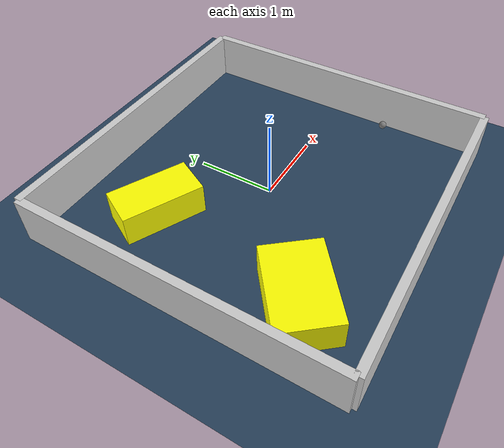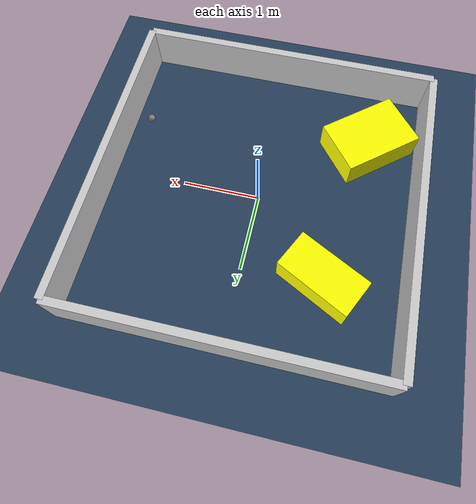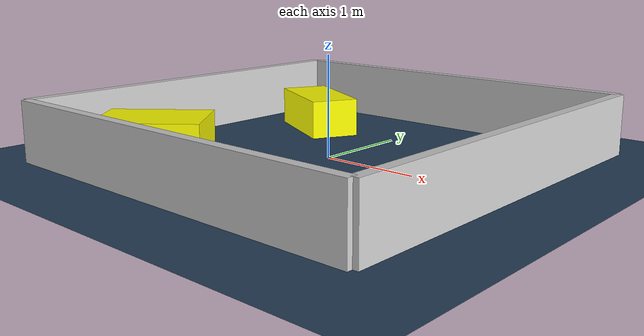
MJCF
<?xml version="1.0" ?>
<mujoco model="generated_environment">
  <option timestep="0.01" integrator="RK4" cone="elliptic"/>
  <default>
    <geom density="1"/>
  </default>
  <asset>
    <texture builtin="gradient" height="3072" rgb1="0.3 0.5 0.7" rgb2="0 0 0" type="skybox" width="512"/>
    <texture builtin="checker" height="300" mark="edge" markrgb="0.8 0.8 0.8" name="groundplane" rgb1="0.2 0.3 0.4" rgb2="0.1 0.2 0.3" type="2d" width="300"/>
    <material name="groundplane" reflectance="0.2" texrepeat="5 5" texture="groundplane" texuniform="true"/>
    <material name="robot" rgba="0.0 1.0 0.0 1"/>
  </asset>
  <worldbody>
    <light dir="0 0 -1" directional="true" pos="0 0 1.5"/>
    <geom condim="4" friction="1.0 0.005 0.001" material="groundplane" name="floor" size="0 0 0.05" type="plane"/>
    <body name="walls">
      <geom name="wall_1" condim="4" pos="-2.0 0.0 0.3" rgba="0.800000011920929 0.800000011920929 0.800000011920929 1.0" size="0.05 2.0 0.3" type="box"/>
      <geom name="wall_2" condim="4" pos="2.0 0.0 0.3" rgba="0.800000011920929 0.800000011920929 0.800000011920929 1.0" size="0.05 2.0 0.3" type="box"/>
      <geom name="wall_3" condim="4" pos="0.0 -2.0 0.3" rgba="0.800000011920929 0.800000011920929 0.800000011920929 1.0" size="2.0 0.05 0.3" type="box"/>
      <geom name="wall_4" condim="4" pos="0.0 2.0 0.3" rgba="0.800000011920929 0.800000011920929 0.800000011920929 1.0" size="2.0 0.05 0.3" type="box"/>
    </body>
    <body name="robot">
      <joint name="joint_x" type="slide" pos="0 0 0" axis="1 0 0"/>
      <joint name="joint_y" type="slide" pos="0 0 0" axis="0 1 0"/>
      <geom name="robot" type="sphere" pos="1.698171637630871 -0.7905143626354583 0.2" size="0.05" mass="5." friction="1.0 0.005 0.0001" condim="4"/>
      <site name="sensor_ball"/>
    </body>
    <body name="obstacle_1_movable">
      <geom name="obstacle_1_movable" condim="4" pos="-0.9971154320904974 0.9538119532516054 0.2" euler="0 0 333.0890417156182" friction="1.0 0.005 0.001" rgba="1 1 0 1" size="0.4941853176143504 0.25150725638771193 0.2" type="box" mass="0.1"/>
      <joint type="free"/>
    </body>
    <body name="obstacle_2_movable">
      <geom name="obstacle_2_movable" condim="4" pos="-1.2911185242672674 -1.0886836874454076 0.2" euler="0 0 38.85906876961414" friction="1.0 0.005 0.001" rgba="1 1 0 1" size="0.5238079779945808 0.3602896334220844 0.2" type="box" mass="0.1"/>
      <joint type="free"/>
    </body>
  </worldbody>
  <actuator>
    <motor name="actuator_x" joint="joint_x" gear="1" ctrlrange="-1 1"/>
    <motor name="actuator_y" joint="joint_y" gear="1" ctrlrange="-1 1"/>
  </actuator>
</mujoco>
